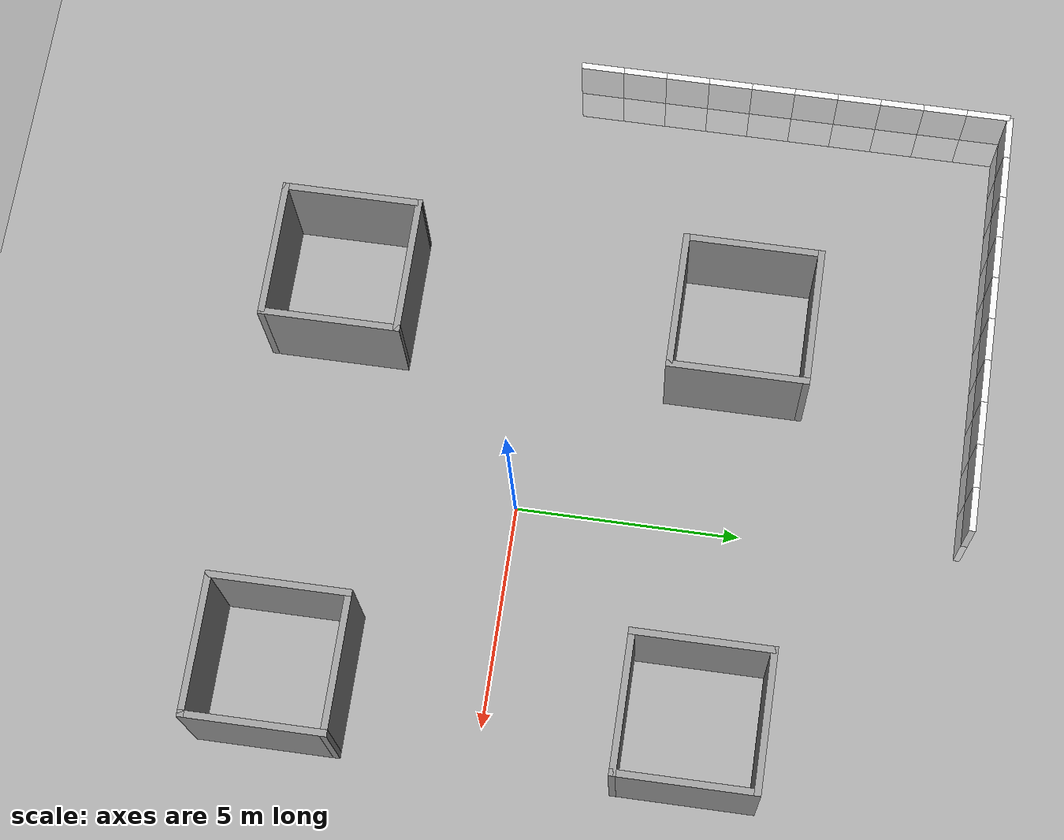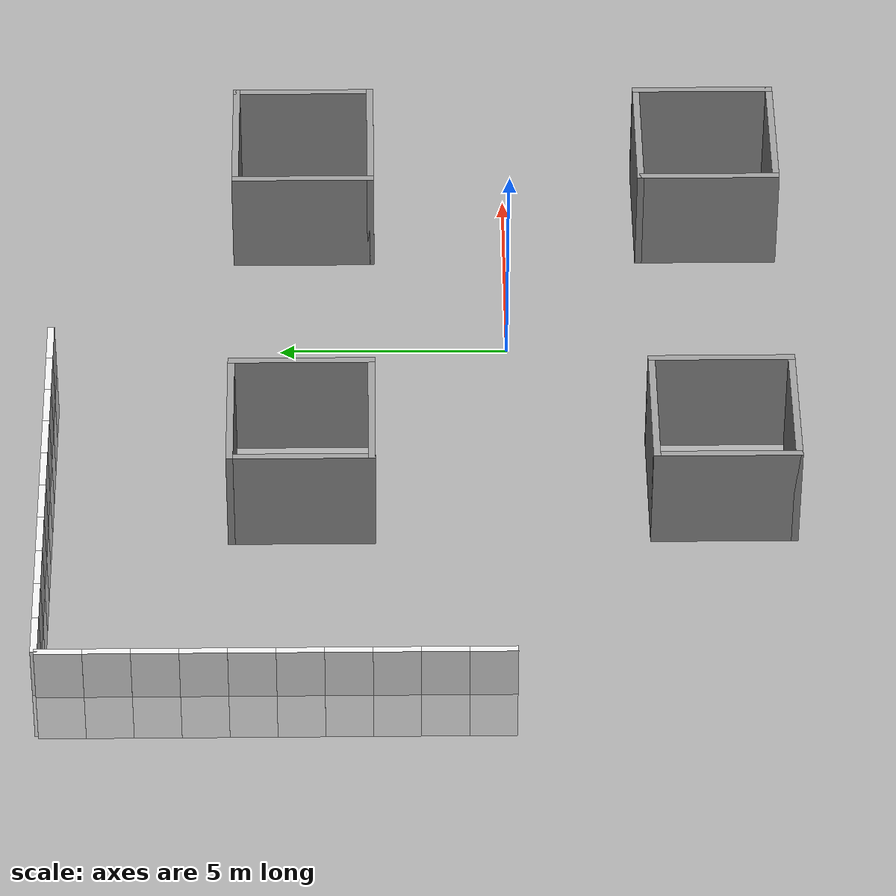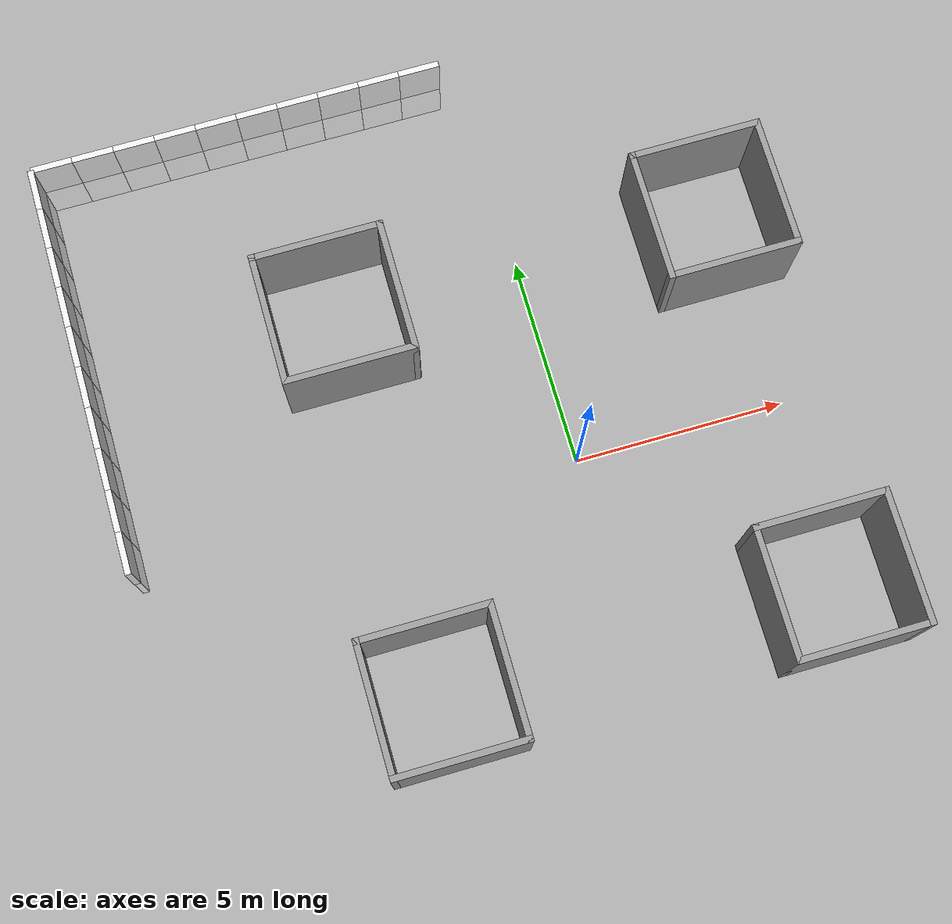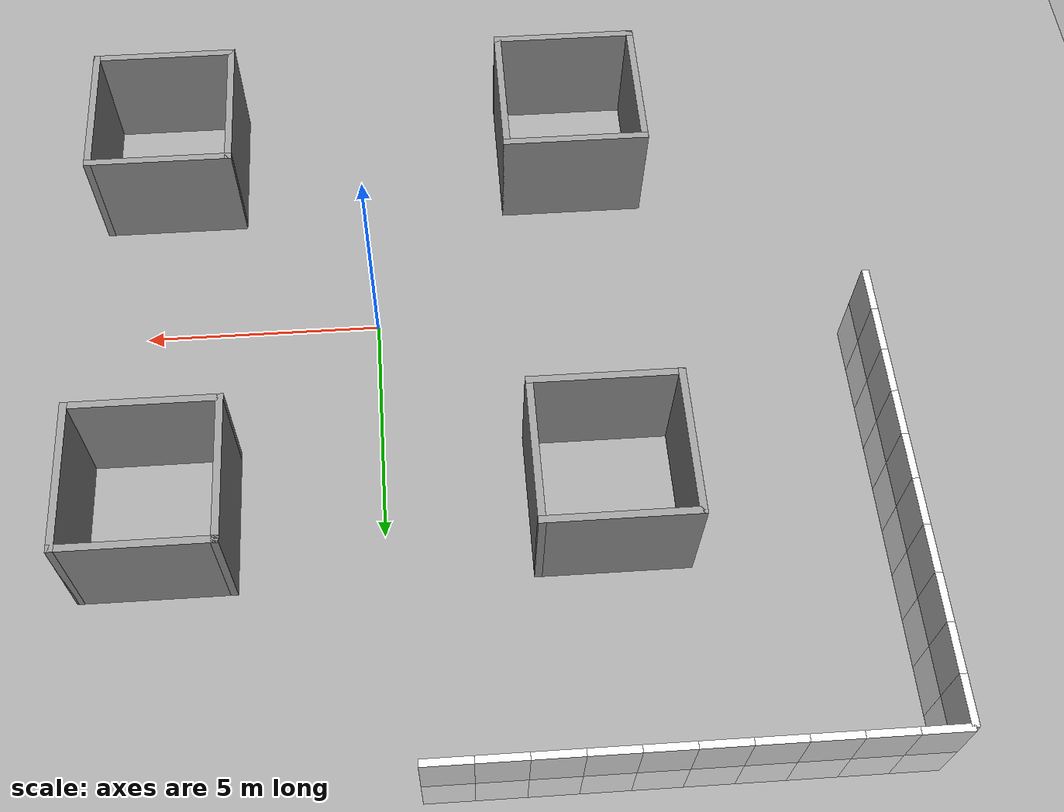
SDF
<sdf version="1.7">
 <world name="default">
  <model name="ground_plane">
   <static>1</static>
   <link name="link">
    <collision name="collision">
     <geometry><plane><normal>0 0 1</normal><size>100 100</size></plane></geometry>
     <surface>
      <contact><collide_bitmask>65535</collide_bitmask></contact>
      <friction><ode><mu>100</mu><mu2>50</mu2></ode></friction>
     </surface>
    </collision>
    <visual name="visual">
     <cast_shadows>0</cast_shadows>
     <geometry><plane><normal>0 0 1</normal><size>100 100</size></plane></geometry>
     <material>
      <script><uri>file://media/materials/scripts/gazebo.material</uri><name>Gazebo/Grey</name></script>
     </material>
    </visual>
   </link>
  </model>
  <model name="wall_left_01">
   <link name="Wall_10">
    <inertial>
     <mass>1</mass>
     <inertia><ixx>1</ixx><ixy>0</ixy><ixz>0</ixz><iyy>1</iyy><iyz>0</iyz><izz>1</izz></inertia>
    </inertial>
    <visual name="Wall_10_Visual_0">
     <geometry><box><size>1 0.15 2.5</size></box></geometry>
     <material>
      <script>
       <uri>model://wall/materials/scripts</uri>
       <uri>model://wall/materials/textures</uri>
       <name>wall_white</name>
      </script>
      <shader type="pixel"><normal_map>__default__</normal_map></shader>
      <ambient>1 1 1 1</ambient>
      <diffuse>1 1 1 1</diffuse>
      <specular>0 0 0 1</specular>
      <emissive>0 0 0 1</emissive>
     </material>
     <meta><layer>0</layer></meta>
    </visual>
    <collision name="Wall_10_Collision_0">
     <geometry><box><size>1 0.15 2.5</size></box></geometry>
     <surface>
      <friction>
       <ode><mu>1</mu><mu2>1</mu2><fdir1>0 0 0</fdir1><slip1>0</slip1><slip2>0</slip2></ode>
       <torsional>
        <coefficient>1</coefficient>
        <patch_radius>0</patch_radius>
        <surface_radius>0</surface_radius>
        <use_patch_radius>1</use_patch_radius>
        <ode><slip>0</slip></ode>
       </torsional>
      </friction>
      <bounce><restitution_coefficient>0</restitution_coefficient><threshold>1e+06</threshold></bounce>
      <contact>
       <collide_without_contact>0</collide_without_contact>
       <collide_without_contact_bitmask>1</collide_without_contact_bitmask>
       <collide_bitmask>1</collide_bitmask>
       <ode>
        <soft_cfm>0</soft_cfm>
        <soft_erp>0.2</soft_erp>
        <kp>1e+13</kp>
        <kd>1</kd>
        <max_vel>0.01</max_vel>
        <min_depth>0</min_depth>
       </ode>
       <bullet>
        <split_impulse>1</split_impulse>
        <split_impulse_penetration_threshold>-0.01</split_impulse_penetration_threshold>
        <soft_cfm>0</soft_cfm>
        <soft_erp>0.2</soft_erp>
        <kp>1e+13</kp>
        <kd>1</kd>
       </bullet>
      </contact>
     </surface>
    </collision>
   </link>
   <static>1</static>
   <pose>-10 10 0 0 -0 0</pose>
  </model>
  <model name="wall_left_02">
   <link name="Wall_10">
    <inertial>
     <mass>1</mass>
     <inertia><ixx>1</ixx><ixy>0</ixy><ixz>0</ixz><iyy>1</iyy><iyz>0</iyz><izz>1</izz></inertia>
    </inertial>
    <visual name="Wall_10_Visual_0">
     <geometry><box><size>1 0.15 2.5</size></box></geometry>
     <material>
      <script>
       <uri>model://wall/materials/scripts</uri>
       <uri>model://wall/materials/textures</uri>
       <name>wall_white</name>
      </script>
      <shader type="pixel"><normal_map>__default__</normal_map></shader>
      <ambient>1 1 1 1</ambient>
      <diffuse>1 1 1 1</diffuse>
      <specular>0 0 0 1</specular>
      <emissive>0 0 0 1</emissive>
     </material>
     <meta><layer>0</layer></meta>
    </visual>
    <collision name="Wall_10_Collision_0">
     <geometry><box><size>1 0.15 2.5</size></box></geometry>
     <surface>
      <friction>
       <ode><mu>1</mu><mu2>1</mu2><fdir1>0 0 0</fdir1><slip1>0</slip1><slip2>0</slip2></ode>
       <torsional>
        <coefficient>1</coefficient>
        <patch_radius>0</patch_radius>
        <surface_radius>0</surface_radius>
        <use_patch_radius>1</use_patch_radius>
        <ode><slip>0</slip></ode>
       </torsional>
      </friction>
      <bounce><restitution_coefficient>0</restitution_coefficient><threshold>1e+06</threshold></bounce>
      <contact>
       <collide_without_contact>0</collide_without_contact>
       <collide_without_contact_bitmask>1</collide_without_contact_bitmask>
       <collide_bitmask>1</collide_bitmask>
       <ode>
        <soft_cfm>0</soft_cfm>
        <soft_erp>0.2</soft_erp>
        <kp>1e+13</kp>
        <kd>1</kd>
        <max_vel>0.01</max_vel>
        <min_depth>0</min_depth>
       </ode>
       <bullet>
        <split_impulse>1</split_impulse>
        <split_impulse_penetration_threshold>-0.01</split_impulse_penetration_threshold>
        <soft_cfm>0</soft_cfm>
        <soft_erp>0.2</soft_erp>
        <kp>1e+13</kp>
        <kd>1</kd>
       </bullet>
      </contact>
     </surface>
    </collision>
   </link>
   <static>1</static>
   <pose>-9 10 0 0 -0 0</pose>
  </model>
  <model name="wall_left_03">
   <link name="Wall_10">
    <inertial>
     <mass>1</mass>
     <inertia><ixx>1</ixx><ixy>0</ixy><ixz>0</ixz><iyy>1</iyy><iyz>0</iyz><izz>1</izz></inertia>
    </inertial>
    <visual name="Wall_10_Visual_0">
     <geometry><box><size>1 0.15 2.5</size></box></geometry>
     <material>
      <script>
       <uri>model://wall/materials/scripts</uri>
       <uri>model://wall/materials/textures</uri>
       <name>wall_white</name>
      </script>
      <shader type="pixel"><normal_map>__default__</normal_map></shader>
      <ambient>1 1 1 1</ambient>
      <diffuse>1 1 1 1</diffuse>
      <specular>0 0 0 1</specular>
      <emissive>0 0 0 1</emissive>
     </material>
     <meta><layer>0</layer></meta>
    </visual>
    <collision name="Wall_10_Collision_0">
     <geometry><box><size>1 0.15 2.5</size></box></geometry>
     <surface>
      <friction>
       <ode><mu>1</mu><mu2>1</mu2><fdir1>0 0 0</fdir1><slip1>0</slip1><slip2>0</slip2></ode>
       <torsional>
        <coefficient>1</coefficient>
        <patch_radius>0</patch_radius>
        <surface_radius>0</surface_radius>
        <use_patch_radius>1</use_patch_radius>
        <ode><slip>0</slip></ode>
       </torsional>
      </friction>
      <bounce><restitution_coefficient>0</restitution_coefficient><threshold>1e+06</threshold></bounce>
      <contact>
       <collide_without_contact>0</collide_without_contact>
       <collide_without_contact_bitmask>1</collide_without_contact_bitmask>
       <collide_bitmask>1</collide_bitmask>
       <ode>
        <soft_cfm>0</soft_cfm>
        <soft_erp>0.2</soft_erp>
        <kp>1e+13</kp>
        <kd>1</kd>
        <max_vel>0.01</max_vel>
        <min_depth>0</min_depth>
       </ode>
       <bullet>
        <split_impulse>1</split_impulse>
        <split_impulse_penetration_threshold>-0.01</split_impulse_penetration_threshold>
        <soft_cfm>0</soft_cfm>
        <soft_erp>0.2</soft_erp>
        <kp>1e+13</kp>
        <kd>1</kd>
       </bullet>
      </contact>
     </surface>
    </collision>
   </link>
   <static>1</static>
   <pose>-8 10 0 0 -0 0</pose>
  </model>
  <model name="wall_left_04">
   <link name="Wall_10">
    <inertial>
     <mass>1</mass>
     <inertia><ixx>1</ixx><ixy>0</ixy><ixz>0</ixz><iyy>1</iyy><iyz>0</iyz><izz>1</izz></inertia>
    </inertial>
    <visual name="Wall_10_Visual_0">
     <geometry><box><size>1 0.15 2.5</size></box></geometry>
     <material>
      <script>
       <uri>model://wall/materials/scripts</uri>
       <uri>model://wall/materials/textures</uri>
       <name>wall_white</name>
      </script>
      <shader type="pixel"><normal_map>__default__</normal_map></shader>
      <ambient>1 1 1 1</ambient>
      <diffuse>1 1 1 1</diffuse>
      <specular>0 0 0 1</specular>
      <emissive>0 0 0 1</emissive>
     </material>
     <meta><layer>0</layer></meta>
    </visual>
    <collision name="Wall_10_Collision_0">
     <geometry><box><size>1 0.15 2.5</size></box></geometry>
     <surface>
      <friction>
       <ode><mu>1</mu><mu2>1</mu2><fdir1>0 0 0</fdir1><slip1>0</slip1><slip2>0</slip2></ode>
       <torsional>
        <coefficient>1</coefficient>
        <patch_radius>0</patch_radius>
        <surface_radius>0</surface_radius>
        <use_patch_radius>1</use_patch_radius>
        <ode><slip>0</slip></ode>
       </torsional>
      </friction>
      <bounce><restitution_coefficient>0</restitution_coefficient><threshold>1e+06</threshold></bounce>
      <contact>
       <collide_without_contact>0</collide_without_contact>
       <collide_without_contact_bitmask>1</collide_without_contact_bitmask>
       <collide_bitmask>1</collide_bitmask>
       <ode>
        <soft_cfm>0</soft_cfm>
        <soft_erp>0.2</soft_erp>
        <kp>1e+13</kp>
        <kd>1</kd>
        <max_vel>0.01</max_vel>
        <min_depth>0</min_depth>
       </ode>
       <bullet>
        <split_impulse>1</split_impulse>
        <split_impulse_penetration_threshold>-0.01</split_impulse_penetration_threshold>
        <soft_cfm>0</soft_cfm>
        <soft_erp>0.2</soft_erp>
        <kp>1e+13</kp>
        <kd>1</kd>
       </bullet>
      </contact>
     </surface>
    </collision>
   </link>
   <static>1</static>
   <pose>-7 10 0 0 -0 0</pose>
  </model>
  <model name="wall_left_05">
   <link name="Wall_10">
    <inertial>
     <mass>1</mass>
     <inertia><ixx>1</ixx><ixy>0</ixy><ixz>0</ixz><iyy>1</iyy><iyz>0</iyz><izz>1</izz></inertia>
    </inertial>
    <visual name="Wall_10_Visual_0">
     <geometry><box><size>1 0.15 2.5</size></box></geometry>
     <material>
      <script>
       <uri>model://wall/materials/scripts</uri>
       <uri>model://wall/materials/textures</uri>
       <name>wall_white</name>
      </script>
      <shader type="pixel"><normal_map>__default__</normal_map></shader>
      <ambient>1 1 1 1</ambient>
      <diffuse>1 1 1 1</diffuse>
      <specular>0 0 0 1</specular>
      <emissive>0 0 0 1</emissive>
     </material>
     <meta><layer>0</layer></meta>
    </visual>
    <collision name="Wall_10_Collision_0">
     <geometry><box><size>1 0.15 2.5</size></box></geometry>
     <surface>
      <friction>
       <ode><mu>1</mu><mu2>1</mu2><fdir1>0 0 0</fdir1><slip1>0</slip1><slip2>0</slip2></ode>
       <torsional>
        <coefficient>1</coefficient>
        <patch_radius>0</patch_radius>
        <surface_radius>0</surface_radius>
        <use_patch_radius>1</use_patch_radius>
        <ode><slip>0</slip></ode>
       </torsional>
      </friction>
      <bounce><restitution_coefficient>0</restitution_coefficient><threshold>1e+06</threshold></bounce>
      <contact>
       <collide_without_contact>0</collide_without_contact>
       <collide_without_contact_bitmask>1</collide_without_contact_bitmask>
       <collide_bitmask>1</collide_bitmask>
       <ode>
        <soft_cfm>0</soft_cfm>
        <soft_erp>0.2</soft_erp>
        <kp>1e+13</kp>
        <kd>1</kd>
        <max_vel>0.01</max_vel>
        <min_depth>0</min_depth>
       </ode>
       <bullet>
        <split_impulse>1</split_impulse>
        <split_impulse_penetration_threshold>-0.01</split_impulse_penetration_threshold>
        <soft_cfm>0</soft_cfm>
        <soft_erp>0.2</soft_erp>
        <kp>1e+13</kp>
        <kd>1</kd>
       </bullet>
      </contact>
     </surface>
    </collision>
   </link>
   <static>1</static>
   <pose>-6 10 0 0 -0 0</pose>
  </model>
  <model name="wall_left_06">
   <link name="Wall_10">
    <inertial>
     <mass>1</mass>
     <inertia><ixx>1</ixx><ixy>0</ixy><ixz>0</ixz><iyy>1</iyy><iyz>0</iyz><izz>1</izz></inertia>
    </inertial>
    <visual name="Wall_10_Visual_0">
     <geometry><box><size>1 0.15 2.5</size></box></geometry>
     <material>
      <script>
       <uri>model://wall/materials/scripts</uri>
       <uri>model://wall/materials/textures</uri>
       <name>wall_white</name>
      </script>
      <shader type="pixel"><normal_map>__default__</normal_map></shader>
      <ambient>1 1 1 1</ambient>
      <diffuse>1 1 1 1</diffuse>
      <specular>0 0 0 1</specular>
      <emissive>0 0 0 1</emissive>
     </material>
     <meta><layer>0</layer></meta>
    </visual>
    <collision name="Wall_10_Collision_0">
     <geometry><box><size>1 0.15 2.5</size></box></geometry>
     <surface>
      <friction>
       <ode><mu>1</mu><mu2>1</mu2><fdir1>0 0 0</fdir1><slip1>0</slip1><slip2>0</slip2></ode>
       <torsional>
        <coefficient>1</coefficient>
        <patch_radius>0</patch_radius>
        <surface_radius>0</surface_radius>
        <use_patch_radius>1</use_patch_radius>
        <ode><slip>0</slip></ode>
       </torsional>
      </friction>
      <bounce><restitution_coefficient>0</restitution_coefficient><threshold>1e+06</threshold></bounce>
      <contact>
       <collide_without_contact>0</collide_without_contact>
       <collide_without_contact_bitmask>1</collide_without_contact_bitmask>
       <collide_bitmask>1</collide_bitmask>
       <ode>
        <soft_cfm>0</soft_cfm>
        <soft_erp>0.2</soft_erp>
        <kp>1e+13</kp>
        <kd>1</kd>
        <max_vel>0.01</max_vel>
        <min_depth>0</min_depth>
       </ode>
       <bullet>
        <split_impulse>1</split_impulse>
        <split_impulse_penetration_threshold>-0.01</split_impulse_penetration_threshold>
        <soft_cfm>0</soft_cfm>
        <soft_erp>0.2</soft_erp>
        <kp>1e+13</kp>
        <kd>1</kd>
       </bullet>
      </contact>
     </surface>
    </collision>
   </link>
   <static>1</static>
   <pose>-5 10 0 0 -0 0</pose>
  </model>
  <model name="wall_left_07">
   <link name="Wall_10">
    <inertial>
     <mass>1</mass>
     <inertia><ixx>1</ixx><ixy>0</ixy><ixz>0</ixz><iyy>1</iyy><iyz>0</iyz><izz>1</izz></inertia>
    </inertial>
    <visual name="Wall_10_Visual_0">
     <geometry><box><size>1 0.15 2.5</size></box></geometry>
     <material>
      <script>
       <uri>model://wall/materials/scripts</uri>
       <uri>model://wall/materials/textures</uri>
       <name>wall_white</name>
      </script>
      <shader type="pixel"><normal_map>__default__</normal_map></shader>
      <ambient>1 1 1 1</ambient>
      <diffuse>1 1 1 1</diffuse>
      <specular>0 0 0 1</specular>
      <emissive>0 0 0 1</emissive>
     </material>
     <meta><layer>0</layer></meta>
    </visual>
    <collision name="Wall_10_Collision_0">
     <geometry><box><size>1 0.15 2.5</size></box></geometry>
     <surface>
      <friction>
       <ode><mu>1</mu><mu2>1</mu2><fdir1>0 0 0</fdir1><slip1>0</slip1><slip2>0</slip2></ode>
       <torsional>
        <coefficient>1</coefficient>
        <patch_radius>0</patch_radius>
        <surface_radius>0</surface_radius>
        <use_patch_radius>1</use_patch_radius>
        <ode><slip>0</slip></ode>
       </torsional>
      </friction>
      <bounce><restitution_coefficient>0</restitution_coefficient><threshold>1e+06</threshold></bounce>
      <contact>
       <collide_without_contact>0</collide_without_contact>
       <collide_without_contact_bitmask>1</collide_without_contact_bitmask>
       <collide_bitmask>1</collide_bitmask>
       <ode>
        <soft_cfm>0</soft_cfm>
        <soft_erp>0.2</soft_erp>
        <kp>1e+13</kp>
        <kd>1</kd>
        <max_vel>0.01</max_vel>
        <min_depth>0</min_depth>
       </ode>
       <bullet>
        <split_impulse>1</split_impulse>
        <split_impulse_penetration_threshold>-0.01</split_impulse_penetration_threshold>
        <soft_cfm>0</soft_cfm>
        <soft_erp>0.2</soft_erp>
        <kp>1e+13</kp>
        <kd>1</kd>
       </bullet>
      </contact>
     </surface>
    </collision>
   </link>
   <static>1</static>
   <pose>-4 10 0 0 -0 0</pose>
  </model>
  <model name="wall_left_08">
   <link name="Wall_10">
    <inertial>
     <mass>1</mass>
     <inertia><ixx>1</ixx><ixy>0</ixy><ixz>0</ixz><iyy>1</iyy><iyz>0</iyz><izz>1</izz></inertia>
    </inertial>
    <visual name="Wall_10_Visual_0">
     <geometry><box><size>1 0.15 2.5</size></box></geometry>
     <material>
      <script>
       <uri>model://wall/materials/scripts</uri>
       <uri>model://wall/materials/textures</uri>
       <name>wall_white</name>
      </script>
      <shader type="pixel"><normal_map>__default__</normal_map></shader>
      <ambient>1 1 1 1</ambient>
      <diffuse>1 1 1 1</diffuse>
      <specular>0 0 0 1</specular>
      <emissive>0 0 0 1</emissive>
     </material>
     <meta><layer>0</layer></meta>
    </visual>
    <collision name="Wall_10_Collision_0">
     <geometry><box><size>1 0.15 2.5</size></box></geometry>
     <surface>
      <friction>
       <ode><mu>1</mu><mu2>1</mu2><fdir1>0 0 0</fdir1><slip1>0</slip1><slip2>0</slip2></ode>
       <torsional>
        <coefficient>1</coefficient>
        <patch_radius>0</patch_radius>
        <surface_radius>0</surface_radius>
        <use_patch_radius>1</use_patch_radius>
        <ode><slip>0</slip></ode>
       </torsional>
      </friction>
      <bounce><restitution_coefficient>0</restitution_coefficient><threshold>1e+06</threshold></bounce>
      <contact>
       <collide_without_contact>0</collide_without_contact>
       <collide_without_contact_bitmask>1</collide_without_contact_bitmask>
       <collide_bitmask>1</collide_bitmask>
       <ode>
        <soft_cfm>0</soft_cfm>
        <soft_erp>0.2</soft_erp>
        <kp>1e+13</kp>
        <kd>1</kd>
        <max_vel>0.01</max_vel>
        <min_depth>0</min_depth>
       </ode>
       <bullet>
        <split_impulse>1</split_impulse>
        <split_impulse_penetration_threshold>-0.01</split_impulse_penetration_threshold>
        <soft_cfm>0</soft_cfm>
        <soft_erp>0.2</soft_erp>
        <kp>1e+13</kp>
        <kd>1</kd>
       </bullet>
      </contact>
     </surface>
    </collision>
   </link>
   <static>1</static>
   <pose>-3 10 0 0 -0 0</pose>
  </model>
  <model name="wall_left_09">
   <link name="Wall_10">
    <inertial>
     <mass>1</mass>
     <inertia><ixx>1</ixx><ixy>0</ixy><ixz>0</ixz><iyy>1</iyy><iyz>0</iyz><izz>1</izz></inertia>
    </inertial>
    <visual name="Wall_10_Visual_0">
     <geometry><box><size>1 0.15 2.5</size></box></geometry>
     <material>
      <script>
       <uri>model://wall/materials/scripts</uri>
       <uri>model://wall/materials/textures</uri>
       <name>wall_white</name>
      </script>
      <shader type="pixel"><normal_map>__default__</normal_map></shader>
      <ambient>1 1 1 1</ambient>
      <diffuse>1 1 1 1</diffuse>
      <specular>0 0 0 1</specular>
      <emissive>0 0 0 1</emissive>
     </material>
     <meta><layer>0</layer></meta>
    </visual>
    <collision name="Wall_10_Collision_0">
     <geometry><box><size>1 0.15 2.5</size></box></geometry>
     <surface>
      <friction>
       <ode><mu>1</mu><mu2>1</mu2><fdir1>0 0 0</fdir1><slip1>0</slip1><slip2>0</slip2></ode>
       <torsional>
        <coefficient>1</coefficient>
        <patch_radius>0</patch_radius>
        <surface_radius>0</surface_radius>
        <use_patch_radius>1</use_patch_radius>
        <ode><slip>0</slip></ode>
       </torsional>
      </friction>
      <bounce><restitution_coefficient>0</restitution_coefficient><threshold>1e+06</threshold></bounce>
      <contact>
       <collide_without_contact>0</collide_without_contact>
       <collide_without_contact_bitmask>1</collide_without_contact_bitmask>
       <collide_bitmask>1</collide_bitmask>
       <ode>
        <soft_cfm>0</soft_cfm>
        <soft_erp>0.2</soft_erp>
        <kp>1e+13</kp>
        <kd>1</kd>
        <max_vel>0.01</max_vel>
        <min_depth>0</min_depth>
       </ode>
       <bullet>
        <split_impulse>1</split_impulse>
        <split_impulse_penetration_threshold>-0.01</split_impulse_penetration_threshold>
        <soft_cfm>0</soft_cfm>
        <soft_erp>0.2</soft_erp>
        <kp>1e+13</kp>
        <kd>1</kd>
       </bullet>
      </contact>
     </surface>
    </collision>
   </link>
   <static>1</static>
   <pose>-2 10 0 0 -0 0</pose>
  </model>
  <model name="wall_left_10">
   <link name="Wall_10">
    <inertial>
     <mass>1</mass>
     <inertia><ixx>1</ixx><ixy>0</ixy><ixz>0</ixz><iyy>1</iyy><iyz>0</iyz><izz>1</izz></inertia>
    </inertial>
    <visual name="Wall_10_Visual_0">
     <geometry><box><size>1 0.15 2.5</size></box></geometry>
     <material>
      <script>
       <uri>model://wall/materials/scripts</uri>
       <uri>model://wall/materials/textures</uri>
       <name>wall_white</name>
      </script>
      <shader type="pixel"><normal_map>__default__</normal_map></shader>
      <ambient>1 1 1 1</ambient>
      <diffuse>1 1 1 1</diffuse>
      <specular>0 0 0 1</specular>
      <emissive>0 0 0 1</emissive>
     </material>
     <meta><layer>0</layer></meta>
    </visual>
    <collision name="Wall_10_Collision_0">
     <geometry><box><size>1 0.15 2.5</size></box></geometry>
     <surface>
      <friction>
       <ode><mu>1</mu><mu2>1</mu2><fdir1>0 0 0</fdir1><slip1>0</slip1><slip2>0</slip2></ode>
       <torsional>
        <coefficient>1</coefficient>
        <patch_radius>0</patch_radius>
        <surface_radius>0</surface_radius>
        <use_patch_radius>1</use_patch_radius>
        <ode><slip>0</slip></ode>
       </torsional>
      </friction>
      <bounce><restitution_coefficient>0</restitution_coefficient><threshold>1e+06</threshold></bounce>
      <contact>
       <collide_without_contact>0</collide_without_contact>
       <collide_without_contact_bitmask>1</collide_without_contact_bitmask>
       <collide_bitmask>1</collide_bitmask>
       <ode>
        <soft_cfm>0</soft_cfm>
        <soft_erp>0.2</soft_erp>
        <kp>1e+13</kp>
        <kd>1</kd>
        <max_vel>0.01</max_vel>
        <min_depth>0</min_depth>
       </ode>
       <bullet>
        <split_impulse>1</split_impulse>
        <split_impulse_penetration_threshold>-0.01</split_impulse_penetration_threshold>
        <soft_cfm>0</soft_cfm>
        <soft_erp>0.2</soft_erp>
        <kp>1e+13</kp>
        <kd>1</kd>
       </bullet>
      </contact>
     </surface>
    </collision>
   </link>
   <static>1</static>
   <pose>-1 10 0 0 -0 0</pose>
  </model>
  <model name="wall_back_01">
   <link name="Wall_10">
    <inertial>
     <mass>1</mass>
     <inertia><ixx>1</ixx><ixy>0</ixy><ixz>0</ixz><iyy>1</iyy><iyz>0</iyz><izz>1</izz></inertia>
    </inertial>
    <visual name="Wall_10_Visual_0">
     <geometry><box><size>1 0.15 2.5</size></box></geometry>
     <material>
      <script>
       <uri>model://wall/materials/scripts</uri>
       <uri>model://wall/materials/textures</uri>
       <name>wall_white</name>
      </script>
      <shader type="pixel"><normal_map>__default__</normal_map></shader>
      <ambient>1 1 1 1</ambient>
      <diffuse>1 1 1 1</diffuse>
      <specular>0 0 0 1</specular>
      <emissive>0 0 0 1</emissive>
     </material>
     <meta><layer>0</layer></meta>
    </visual>
    <collision name="Wall_10_Collision_0">
     <geometry><box><size>1 0.15 2.5</size></box></geometry>
     <surface>
      <friction>
       <ode><mu>1</mu><mu2>1</mu2><fdir1>0 0 0</fdir1><slip1>0</slip1><slip2>0</slip2></ode>
       <torsional>
        <coefficient>1</coefficient>
        <patch_radius>0</patch_radius>
        <surface_radius>0</surface_radius>
        <use_patch_radius>1</use_patch_radius>
        <ode><slip>0</slip></ode>
       </torsional>
      </friction>
      <bounce><restitution_coefficient>0</restitution_coefficient><threshold>1e+06</threshold></bounce>
      <contact>
       <collide_without_contact>0</collide_without_contact>
       <collide_without_contact_bitmask>1</collide_without_contact_bitmask>
       <collide_bitmask>1</collide_bitmask>
       <ode>
        <soft_cfm>0</soft_cfm>
        <soft_erp>0.2</soft_erp>
        <kp>1e+13</kp>
        <kd>1</kd>
        <max_vel>0.01</max_vel>
        <min_depth>0</min_depth>
       </ode>
       <bullet>
        <split_impulse>1</split_impulse>
        <split_impulse_penetration_threshold>-0.01</split_impulse_penetration_threshold>
        <soft_cfm>0</soft_cfm>
        <soft_erp>0.2</soft_erp>
        <kp>1e+13</kp>
        <kd>1</kd>
       </bullet>
      </contact>
     </surface>
    </collision>
   </link>
   <static>1</static>
   <pose>-10.5 9.5 0 0 -0 1.57</pose>
  </model>
  <model name="wall_back_02">
   <link name="Wall_10">
    <inertial>
     <mass>1</mass>
     <inertia><ixx>1</ixx><ixy>0</ixy><ixz>0</ixz><iyy>1</iyy><iyz>0</iyz><izz>1</izz></inertia>
    </inertial>
    <visual name="Wall_10_Visual_0">
     <geometry><box><size>1 0.15 2.5</size></box></geometry>
     <material>
      <script>
       <uri>model://wall/materials/scripts</uri>
       <uri>model://wall/materials/textures</uri>
       <name>wall_white</name>
      </script>
      <shader type="pixel"><normal_map>__default__</normal_map></shader>
      <ambient>1 1 1 1</ambient>
      <diffuse>1 1 1 1</diffuse>
      <specular>0 0 0 1</specular>
      <emissive>0 0 0 1</emissive>
     </material>
     <meta><layer>0</layer></meta>
    </visual>
    <collision name="Wall_10_Collision_0">
     <geometry><box><size>1 0.15 2.5</size></box></geometry>
     <surface>
      <friction>
       <ode><mu>1</mu><mu2>1</mu2><fdir1>0 0 0</fdir1><slip1>0</slip1><slip2>0</slip2></ode>
       <torsional>
        <coefficient>1</coefficient>
        <patch_radius>0</patch_radius>
        <surface_radius>0</surface_radius>
        <use_patch_radius>1</use_patch_radius>
        <ode><slip>0</slip></ode>
       </torsional>
      </friction>
      <bounce><restitution_coefficient>0</restitution_coefficient><threshold>1e+06</threshold></bounce>
      <contact>
       <collide_without_contact>0</collide_without_contact>
       <collide_without_contact_bitmask>1</collide_without_contact_bitmask>
       <collide_bitmask>1</collide_bitmask>
       <ode>
        <soft_cfm>0</soft_cfm>
        <soft_erp>0.2</soft_erp>
        <kp>1e+13</kp>
        <kd>1</kd>
        <max_vel>0.01</max_vel>
        <min_depth>0</min_depth>
       </ode>
       <bullet>
        <split_impulse>1</split_impulse>
        <split_impulse_penetration_threshold>-0.01</split_impulse_penetration_threshold>
        <soft_cfm>0</soft_cfm>
        <soft_erp>0.2</soft_erp>
        <kp>1e+13</kp>
        <kd>1</kd>
       </bullet>
      </contact>
     </surface>
    </collision>
   </link>
   <static>1</static>
   <pose>-10.5 8.5 0 0 -0 1.57</pose>
  </model>
  <model name="wall_back_03">
   <link name="Wall_10">
    <inertial>
     <mass>1</mass>
     <inertia><ixx>1</ixx><ixy>0</ixy><ixz>0</ixz><iyy>1</iyy><iyz>0</iyz><izz>1</izz></inertia>
    </inertial>
    <visual name="Wall_10_Visual_0">
     <geometry><box><size>1 0.15 2.5</size></box></geometry>
     <material>
      <script>
       <uri>model://wall/materials/scripts</uri>
       <uri>model://wall/materials/textures</uri>
       <name>wall_white</name>
      </script>
      <shader type="pixel"><normal_map>__default__</normal_map></shader>
      <ambient>1 1 1 1</ambient>
      <diffuse>1 1 1 1</diffuse>
      <specular>0 0 0 1</specular>
      <emissive>0 0 0 1</emissive>
     </material>
     <meta><layer>0</layer></meta>
    </visual>
    <collision name="Wall_10_Collision_0">
     <geometry><box><size>1 0.15 2.5</size></box></geometry>
     <surface>
      <friction>
       <ode><mu>1</mu><mu2>1</mu2><fdir1>0 0 0</fdir1><slip1>0</slip1><slip2>0</slip2></ode>
       <torsional>
        <coefficient>1</coefficient>
        <patch_radius>0</patch_radius>
        <surface_radius>0</surface_radius>
        <use_patch_radius>1</use_patch_radius>
        <ode><slip>0</slip></ode>
       </torsional>
      </friction>
      <bounce><restitution_coefficient>0</restitution_coefficient><threshold>1e+06</threshold></bounce>
      <contact>
       <collide_without_contact>0</collide_without_contact>
       <collide_without_contact_bitmask>1</collide_without_contact_bitmask>
       <collide_bitmask>1</collide_bitmask>
       <ode>
        <soft_cfm>0</soft_cfm>
        <soft_erp>0.2</soft_erp>
        <kp>1e+13</kp>
        <kd>1</kd>
        <max_vel>0.01</max_vel>
        <min_depth>0</min_depth>
       </ode>
       <bullet>
        <split_impulse>1</split_impulse>
        <split_impulse_penetration_threshold>-0.01</split_impulse_penetration_threshold>
        <soft_cfm>0</soft_cfm>
        <soft_erp>0.2</soft_erp>
        <kp>1e+13</kp>
        <kd>1</kd>
       </bullet>
      </contact>
     </surface>
    </collision>
   </link>
   <static>1</static>
   <pose>-10.5 7.5 0 0 -0 1.57</pose>
  </model>
  <model name="wall_back_04">
   <link name="Wall_10">
    <inertial>
     <mass>1</mass>
     <inertia><ixx>1</ixx><ixy>0</ixy><ixz>0</ixz><iyy>1</iyy><iyz>0</iyz><izz>1</izz></inertia>
    </inertial>
    <visual name="Wall_10_Visual_0">
     <geometry><box><size>1 0.15 2.5</size></box></geometry>
     <material>
      <script>
       <uri>model://wall/materials/scripts</uri>
       <uri>model://wall/materials/textures</uri>
       <name>wall_white</name>
      </script>
      <shader type="pixel"><normal_map>__default__</normal_map></shader>
      <ambient>1 1 1 1</ambient>
      <diffuse>1 1 1 1</diffuse>
      <specular>0 0 0 1</specular>
      <emissive>0 0 0 1</emissive>
     </material>
     <meta><layer>0</layer></meta>
    </visual>
    <collision name="Wall_10_Collision_0">
     <geometry><box><size>1 0.15 2.5</size></box></geometry>
     <surface>
      <friction>
       <ode><mu>1</mu><mu2>1</mu2><fdir1>0 0 0</fdir1><slip1>0</slip1><slip2>0</slip2></ode>
       <torsional>
        <coefficient>1</coefficient>
        <patch_radius>0</patch_radius>
        <surface_radius>0</surface_radius>
        <use_patch_radius>1</use_patch_radius>
        <ode><slip>0</slip></ode>
       </torsional>
      </friction>
      <bounce><restitution_coefficient>0</restitution_coefficient><threshold>1e+06</threshold></bounce>
      <contact>
       <collide_without_contact>0</collide_without_contact>
       <collide_without_contact_bitmask>1</collide_without_contact_bitmask>
       <collide_bitmask>1</collide_bitmask>
       <ode>
        <soft_cfm>0</soft_cfm>
        <soft_erp>0.2</soft_erp>
        <kp>1e+13</kp>
        <kd>1</kd>
        <max_vel>0.01</max_vel>
        <min_depth>0</min_depth>
       </ode>
       <bullet>
        <split_impulse>1</split_impulse>
        <split_impulse_penetration_threshold>-0.01</split_impulse_penetration_threshold>
        <soft_cfm>0</soft_cfm>
        <soft_erp>0.2</soft_erp>
        <kp>1e+13</kp>
        <kd>1</kd>
       </bullet>
      </contact>
     </surface>
    </collision>
   </link>
   <static>1</static>
   <pose>-10.5 6.5 0 0 -0 1.57</pose>
  </model>
  <model name="wall_back_05">
   <link name="Wall_10">
    <inertial>
     <mass>1</mass>
     <inertia><ixx>1</ixx><ixy>0</ixy><ixz>0</ixz><iyy>1</iyy><iyz>0</iyz><izz>1</izz></inertia>
    </inertial>
    <visual name="Wall_10_Visual_0">
     <geometry><box><size>1 0.15 2.5</size></box></geometry>
     <material>
      <script>
       <uri>model://wall/materials/scripts</uri>
       <uri>model://wall/materials/textures</uri>
       <name>wall_white</name>
      </script>
      <shader type="pixel"><normal_map>__default__</normal_map></shader>
      <ambient>1 1 1 1</ambient>
      <diffuse>1 1 1 1</diffuse>
      <specular>0 0 0 1</specular>
      <emissive>0 0 0 1</emissive>
     </material>
     <meta><layer>0</layer></meta>
    </visual>
    <collision name="Wall_10_Collision_0">
     <geometry><box><size>1 0.15 2.5</size></box></geometry>
     <surface>
      <friction>
       <ode><mu>1</mu><mu2>1</mu2><fdir1>0 0 0</fdir1><slip1>0</slip1><slip2>0</slip2></ode>
       <torsional>
        <coefficient>1</coefficient>
        <patch_radius>0</patch_radius>
        <surface_radius>0</surface_radius>
        <use_patch_radius>1</use_patch_radius>
        <ode><slip>0</slip></ode>
       </torsional>
      </friction>
      <bounce><restitution_coefficient>0</restitution_coefficient><threshold>1e+06</threshold></bounce>
      <contact>
       <collide_without_contact>0</collide_without_contact>
       <collide_without_contact_bitmask>1</collide_without_contact_bitmask>
       <collide_bitmask>1</collide_bitmask>
       <ode>
        <soft_cfm>0</soft_cfm>
        <soft_erp>0.2</soft_erp>
        <kp>1e+13</kp>
        <kd>1</kd>
        <max_vel>0.01</max_vel>
        <min_depth>0</min_depth>
       </ode>
       <bullet>
        <split_impulse>1</split_impulse>
        <split_impulse_penetration_threshold>-0.01</split_impulse_penetration_threshold>
        <soft_cfm>0</soft_cfm>
        <soft_erp>0.2</soft_erp>
        <kp>1e+13</kp>
        <kd>1</kd>
       </bullet>
      </contact>
     </surface>
    </collision>
   </link>
   <static>1</static>
   <pose>-10.5 5.5 0 0 -0 1.57</pose>
  </model>
  <model name="wall_back_06">
   <link name="Wall_10">
    <inertial>
     <mass>1</mass>
     <inertia><ixx>1</ixx><ixy>0</ixy><ixz>0</ixz><iyy>1</iyy><iyz>0</iyz><izz>1</izz></inertia>
    </inertial>
    <visual name="Wall_10_Visual_0">
     <geometry><box><size>1 0.15 2.5</size></box></geometry>
     <material>
      <script>
       <uri>model://wall/materials/scripts</uri>
       <uri>model://wall/materials/textures</uri>
       <name>wall_white</name>
      </script>
      <shader type="pixel"><normal_map>__default__</normal_map></shader>
      <ambient>1 1 1 1</ambient>
      <diffuse>1 1 1 1</diffuse>
      <specular>0 0 0 1</specular>
      <emissive>0 0 0 1</emissive>
     </material>
     <meta><layer>0</layer></meta>
    </visual>
    <collision name="Wall_10_Collision_0">
     <geometry><box><size>1 0.15 2.5</size></box></geometry>
     <surface>
      <friction>
       <ode><mu>1</mu><mu2>1</mu2><fdir1>0 0 0</fdir1><slip1>0</slip1><slip2>0</slip2></ode>
       <torsional>
        <coefficient>1</coefficient>
        <patch_radius>0</patch_radius>
        <surface_radius>0</surface_radius>
        <use_patch_radius>1</use_patch_radius>
        <ode><slip>0</slip></ode>
       </torsional>
      </friction>
      <bounce><restitution_coefficient>0</restitution_coefficient><threshold>1e+06</threshold></bounce>
      <contact>
       <collide_without_contact>0</collide_without_contact>
       <collide_without_contact_bitmask>1</collide_without_contact_bitmask>
       <collide_bitmask>1</collide_bitmask>
       <ode>
        <soft_cfm>0</soft_cfm>
        <soft_erp>0.2</soft_erp>
        <kp>1e+13</kp>
        <kd>1</kd>
        <max_vel>0.01</max_vel>
        <min_depth>0</min_depth>
       </ode>
       <bullet>
        <split_impulse>1</split_impulse>
        <split_impulse_penetration_threshold>-0.01</split_impulse_penetration_threshold>
        <soft_cfm>0</soft_cfm>
        <soft_erp>0.2</soft_erp>
        <kp>1e+13</kp>
        <kd>1</kd>
       </bullet>
      </contact>
     </surface>
    </collision>
   </link>
   <static>1</static>
   <pose>-10.5 4.5 0 0 -0 1.57</pose>
  </model>
  <model name="wall_back_07">
   <link name="Wall_10">
    <inertial>
     <mass>1</mass>
     <inertia><ixx>1</ixx><ixy>0</ixy><ixz>0</ixz><iyy>1</iyy><iyz>0</iyz><izz>1</izz></inertia>
    </inertial>
    <visual name="Wall_10_Visual_0">
     <geometry><box><size>1 0.15 2.5</size></box></geometry>
     <material>
      <script>
       <uri>model://wall/materials/scripts</uri>
       <uri>model://wall/materials/textures</uri>
       <name>wall_white</name>
      </script>
      <shader type="pixel"><normal_map>__default__</normal_map></shader>
      <ambient>1 1 1 1</ambient>
      <diffuse>1 1 1 1</diffuse>
      <specular>0 0 0 1</specular>
      <emissive>0 0 0 1</emissive>
     </material>
     <meta><layer>0</layer></meta>
    </visual>
    <collision name="Wall_10_Collision_0">
     <geometry><box><size>1 0.15 2.5</size></box></geometry>
     <surface>
      <friction>
       <ode><mu>1</mu><mu2>1</mu2><fdir1>0 0 0</fdir1><slip1>0</slip1><slip2>0</slip2></ode>
       <torsional>
        <coefficient>1</coefficient>
        <patch_radius>0</patch_radius>
        <surface_radius>0</surface_radius>
        <use_patch_radius>1</use_patch_radius>
        <ode><slip>0</slip></ode>
       </torsional>
      </friction>
      <bounce><restitution_coefficient>0</restitution_coefficient><threshold>1e+06</threshold></bounce>
      <contact>
       <collide_without_contact>0</collide_without_contact>
       <collide_without_contact_bitmask>1</collide_without_contact_bitmask>
       <collide_bitmask>1</collide_bitmask>
       <ode>
        <soft_cfm>0</soft_cfm>
        <soft_erp>0.2</soft_erp>
        <kp>1e+13</kp>
        <kd>1</kd>
        <max_vel>0.01</max_vel>
        <min_depth>0</min_depth>
       </ode>
       <bullet>
        <split_impulse>1</split_impulse>
        <split_impulse_penetration_threshold>-0.01</split_impulse_penetration_threshold>
        <soft_cfm>0</soft_cfm>
        <soft_erp>0.2</soft_erp>
        <kp>1e+13</kp>
        <kd>1</kd>
       </bullet>
      </contact>
     </surface>
    </collision>
   </link>
   <static>1</static>
   <pose>-10.5 3.5 0 0 -0 1.57</pose>
  </model>
  <model name="wall_back_08">
   <link name="Wall_10">
    <inertial>
     <mass>1</mass>
     <inertia><ixx>1</ixx><ixy>0</ixy><ixz>0</ixz><iyy>1</iyy><iyz>0</iyz><izz>1</izz></inertia>
    </inertial>
    <visual name="Wall_10_Visual_0">
     <geometry><box><size>1 0.15 2.5</size></box></geometry>
     <material>
      <script>
       <uri>model://wall/materials/scripts</uri>
       <uri>model://wall/materials/textures</uri>
       <name>wall_white</name>
      </script>
      <shader type="pixel"><normal_map>__default__</normal_map></shader>
      <ambient>1 1 1 1</ambient>
      <diffuse>1 1 1 1</diffuse>
      <specular>0 0 0 1</specular>
      <emissive>0 0 0 1</emissive>
     </material>
     <meta><layer>0</layer></meta>
    </visual>
    <collision name="Wall_10_Collision_0">
     <geometry><box><size>1 0.15 2.5</size></box></geometry>
     <surface>
      <friction>
       <ode><mu>1</mu><mu2>1</mu2><fdir1>0 0 0</fdir1><slip1>0</slip1><slip2>0</slip2></ode>
       <torsional>
        <coefficient>1</coefficient>
        <patch_radius>0</patch_radius>
        <surface_radius>0</surface_radius>
        <use_patch_radius>1</use_patch_radius>
        <ode><slip>0</slip></ode>
       </torsional>
      </friction>
      <bounce><restitution_coefficient>0</restitution_coefficient><threshold>1e+06</threshold></bounce>
      <contact>
       <collide_without_contact>0</collide_without_contact>
       <collide_without_contact_bitmask>1</collide_without_contact_bitmask>
       <collide_bitmask>1</collide_bitmask>
       <ode>
        <soft_cfm>0</soft_cfm>
        <soft_erp>0.2</soft_erp>
        <kp>1e+13</kp>
        <kd>1</kd>
        <max_vel>0.01</max_vel>
        <min_depth>0</min_depth>
       </ode>
       <bullet>
        <split_impulse>1</split_impulse>
        <split_impulse_penetration_threshold>-0.01</split_impulse_penetration_threshold>
        <soft_cfm>0</soft_cfm>
        <soft_erp>0.2</soft_erp>
        <kp>1e+13</kp>
        <kd>1</kd>
       </bullet>
      </contact>
     </surface>
    </collision>
   </link>
   <static>1</static>
   <pose>-10.5 2.5 0 0 -0 1.57</pose>
  </model>
  <model name="wall_back_09">
   <link name="Wall_10">
    <inertial>
     <mass>1</mass>
     <inertia><ixx>1</ixx><ixy>0</ixy><ixz>0</ixz><iyy>1</iyy><iyz>0</iyz><izz>1</izz></inertia>
    </inertial>
    <visual name="Wall_10_Visual_0">
     <geometry><box><size>1 0.15 2.5</size></box></geometry>
     <material>
      <script>
       <uri>model://wall/materials/scripts</uri>
       <uri>model://wall/materials/textures</uri>
       <name>wall_white</name>
      </script>
      <shader type="pixel"><normal_map>__default__</normal_map></shader>
      <ambient>1 1 1 1</ambient>
      <diffuse>1 1 1 1</diffuse>
      <specular>0 0 0 1</specular>
      <emissive>0 0 0 1</emissive>
     </material>
     <meta><layer>0</layer></meta>
    </visual>
    <collision name="Wall_10_Collision_0">
     <geometry><box><size>1 0.15 2.5</size></box></geometry>
     <surface>
      <friction>
       <ode><mu>1</mu><mu2>1</mu2><fdir1>0 0 0</fdir1><slip1>0</slip1><slip2>0</slip2></ode>
       <torsional>
        <coefficient>1</coefficient>
        <patch_radius>0</patch_radius>
        <surface_radius>0</surface_radius>
        <use_patch_radius>1</use_patch_radius>
        <ode><slip>0</slip></ode>
       </torsional>
      </friction>
      <bounce><restitution_coefficient>0</restitution_coefficient><threshold>1e+06</threshold></bounce>
      <contact>
       <collide_without_contact>0</collide_without_contact>
       <collide_without_contact_bitmask>1</collide_without_contact_bitmask>
       <collide_bitmask>1</collide_bitmask>
       <ode>
        <soft_cfm>0</soft_cfm>
        <soft_erp>0.2</soft_erp>
        <kp>1e+13</kp>
        <kd>1</kd>
        <max_vel>0.01</max_vel>
        <min_depth>0</min_depth>
       </ode>
       <bullet>
        <split_impulse>1</split_impulse>
        <split_impulse_penetration_threshold>-0.01</split_impulse_penetration_threshold>
        <soft_cfm>0</soft_cfm>
        <soft_erp>0.2</soft_erp>
        <kp>1e+13</kp>
        <kd>1</kd>
       </bullet>
      </contact>
     </surface>
    </collision>
   </link>
   <static>1</static>
   <pose>-10.5 1.5 0 0 -0 1.57</pose>
  </model>
  <model name="wall_back_10">
   <link name="Wall_10">
    <inertial>
     <mass>1</mass>
     <inertia><ixx>1</ixx><ixy>0</ixy><ixz>0</ixz><iyy>1</iyy><iyz>0</iyz><izz>1</izz></inertia>
    </inertial>
    <visual name="Wall_10_Visual_0">
     <geometry><box><size>1 0.15 2.5</size></box></geometry>
     <material>
      <script>
       <uri>model://wall/materials/scripts</uri>
       <uri>model://wall/materials/textures</uri>
       <name>wall_white</name>
      </script>
      <shader type="pixel"><normal_map>__default__</normal_map></shader>
      <ambient>1 1 1 1</ambient>
      <diffuse>1 1 1 1</diffuse>
      <specular>0 0 0 1</specular>
      <emissive>0 0 0 1</emissive>
     </material>
     <meta><layer>0</layer></meta>
    </visual>
    <collision name="Wall_10_Collision_0">
     <geometry><box><size>1 0.15 2.5</size></box></geometry>
     <surface>
      <friction>
       <ode><mu>1</mu><mu2>1</mu2><fdir1>0 0 0</fdir1><slip1>0</slip1><slip2>0</slip2></ode>
       <torsional>
        <coefficient>1</coefficient>
        <patch_radius>0</patch_radius>
        <surface_radius>0</surface_radius>
        <use_patch_radius>1</use_patch_radius>
        <ode><slip>0</slip></ode>
       </torsional>
      </friction>
      <bounce><restitution_coefficient>0</restitution_coefficient><threshold>1e+06</threshold></bounce>
      <contact>
       <collide_without_contact>0</collide_without_contact>
       <collide_without_contact_bitmask>1</collide_without_contact_bitmask>
       <collide_bitmask>1</collide_bitmask>
       <ode>
        <soft_cfm>0</soft_cfm>
        <soft_erp>0.2</soft_erp>
        <kp>1e+13</kp>
        <kd>1</kd>
        <max_vel>0.01</max_vel>
        <min_depth>0</min_depth>
       </ode>
       <bullet>
        <split_impulse>1</split_impulse>
        <split_impulse_penetration_threshold>-0.01</split_impulse_penetration_threshold>
        <soft_cfm>0</soft_cfm>
        <soft_erp>0.2</soft_erp>
        <kp>1e+13</kp>
        <kd>1</kd>
       </bullet>
      </contact>
     </surface>
    </collision>
   </link>
   <static>1</static>
   <pose>-10.5 0.5 0 0 -0 1.57</pose>
  </model>
  <model name="tmp">
   <pose>-0.00022 0 0 0 -0 0</pose>
   <link name="Wall_0">
    <collision name="Wall_0_Collision">
     <geometry><box><size>3.15 0.15 2.5</size></box></geometry>
     <pose>0 0 1.25 0 -0 0</pose>
    </collision>
    <visual name="Wall_0_Visual">
     <pose>0 0 1.25 0 -0 0</pose>
     <geometry><box><size>3.15 0.15 2.5</size></box></geometry>
     <material>
      <script><uri>file://media/materials/scripts/gazebo.material</uri><name>Gazebo/Grey</name></script>
      <ambient>1 1 1 1</ambient>
     </material>
     <meta><layer>0</layer></meta>
    </visual>
    <pose>-4.49978 -3 0 0 -0 0</pose>
   </link>
   <link name="Wall_1">
    <collision name="Wall_1_Collision">
     <geometry><box><size>3.15 0.15 2.5</size></box></geometry>
     <pose>0 0 1.25 0 -0 0</pose>
    </collision>
    <visual name="Wall_1_Visual">
     <pose>0 0 1.25 0 -0 0</pose>
     <geometry><box><size>3.15 0.15 2.5</size></box></geometry>
     <material>
      <script><uri>file://media/materials/scripts/gazebo.material</uri><name>Gazebo/Grey</name></script>
      <ambient>1 1 1 1</ambient>
     </material>
     <meta><layer>0</layer></meta>
    </visual>
    <pose>-2.99978 -4.5 0 0 -0 -1.5708</pose>
   </link>
   <link name="Wall_10">
    <collision name="Wall_10_Collision">
     <geometry><box><size>3.15 0.15 2.5</size></box></geometry>
     <pose>0 0 1.25 0 -0 0</pose>
    </collision>
    <visual name="Wall_10_Visual">
     <pose>0 0 1.25 0 -0 0</pose>
     <geometry><box><size>3.15 0.15 2.5</size></box></geometry>
     <material>
      <script><uri>file://media/materials/scripts/gazebo.material</uri><name>Gazebo/Grey</name></script>
      <ambient>1 1 1 1</ambient>
     </material>
     <meta><layer>0</layer></meta>
    </visual>
    <pose>-4.49978 3 0 0 -0 0</pose>
   </link>
   <link name="Wall_11">
    <collision name="Wall_11_Collision">
     <geometry><box><size>3.15 0.15 2.5</size></box></geometry>
     <pose>0 0 1.25 0 -0 0</pose>
    </collision>
    <visual name="Wall_11_Visual">
     <pose>0 0 1.25 0 -0 0</pose>
     <geometry><box><size>3.15 0.15 2.5</size></box></geometry>
     <material>
      <script><uri>file://media/materials/scripts/gazebo.material</uri><name>Gazebo/Grey</name></script>
      <ambient>1 1 1 1</ambient>
     </material>
     <meta><layer>0</layer></meta>
    </visual>
    <pose>-2.99978 4.5 0 0 -0 1.5708</pose>
   </link>
   <link name="Wall_12">
    <collision name="Wall_12_Collision">
     <geometry><box><size>3.15089 0.15 2.5</size></box></geometry>
     <pose>0 0 1.25 0 -0 0</pose>
    </collision>
    <visual name="Wall_12_Visual">
     <pose>0 0 1.25 0 -0 0</pose>
     <geometry><box><size>3.15089 0.15 2.5</size></box></geometry>
     <material>
      <script><uri>file://media/materials/scripts/gazebo.material</uri><name>Gazebo/Grey</name></script>
      <ambient>1 1 1 1</ambient>
     </material>
     <meta><layer>0</layer></meta>
    </visual>
    <pose>-4.49978 6 0 0 -0 3.14159</pose>
   </link>
   <link name="Wall_13">
    <collision name="Wall_13_Collision">
     <geometry><box><size>3.15 0.15 2.5</size></box></geometry>
     <pose>0 0 1.25 0 -0 0</pose>
    </collision>
    <visual name="Wall_13_Visual">
     <pose>0 0 1.25 0 -0 0</pose>
     <geometry><box><size>3.15 0.15 2.5</size></box></geometry>
     <material>
      <script><uri>file://media/materials/scripts/gazebo.material</uri><name>Gazebo/Grey</name></script>
      <ambient>1 1 1 1</ambient>
     </material>
     <meta><layer>0</layer></meta>
    </visual>
    <pose>-5.99978 4.5 0 0 -0 -1.5708</pose>
   </link>
   <link name="Wall_15">
    <collision name="Wall_15_Collision">
     <geometry><box><size>3.15 0.15 2.5</size></box></geometry>
     <pose>0 0 1.25 0 -0 0</pose>
    </collision>
    <visual name="Wall_15_Visual">
     <pose>0 0 1.25 0 -0 0</pose>
     <geometry><box><size>3.15 0.15 2.5</size></box></geometry>
     <material>
      <script><uri>file://media/materials/scripts/gazebo.material</uri><name>Gazebo/Grey</name></script>
      <ambient>1 1 1 1</ambient>
     </material>
     <meta><layer>0</layer></meta>
    </visual>
    <pose>3.00022 4.5 0 0 -0 1.5708</pose>
   </link>
   <link name="Wall_16">
    <collision name="Wall_16_Collision">
     <geometry><box><size>3.15 0.15 2.5</size></box></geometry>
     <pose>0 0 1.25 0 -0 0</pose>
    </collision>
    <visual name="Wall_16_Visual">
     <pose>0 0 1.25 0 -0 0</pose>
     <geometry><box><size>3.15 0.15 2.5</size></box></geometry>
     <material>
      <script><uri>file://media/materials/scripts/gazebo.material</uri><name>Gazebo/Grey</name></script>
      <ambient>1 1 1 1</ambient>
     </material>
     <meta><layer>0</layer></meta>
    </visual>
    <pose>4.50022 6 0 0 -0 0</pose>
   </link>
   <link name="Wall_17">
    <collision name="Wall_17_Collision">
     <geometry><box><size>3.15 0.15 2.5</size></box></geometry>
     <pose>0 0 1.25 0 -0 0</pose>
    </collision>
    <visual name="Wall_17_Visual">
     <pose>0 0 1.25 0 -0 0</pose>
     <geometry><box><size>3.15 0.15 2.5</size></box></geometry>
     <material>
      <script><uri>file://media/materials/scripts/gazebo.material</uri><name>Gazebo/Grey</name></script>
      <ambient>1 1 1 1</ambient>
     </material>
     <meta><layer>0</layer></meta>
    </visual>
    <pose>6.00022 4.5 0 0 -0 -1.5708</pose>
   </link>
   <link name="Wall_18">
    <collision name="Wall_18_Collision">
     <geometry><box><size>3.15 0.15 2.5</size></box></geometry>
     <pose>0 0 1.25 0 -0 0</pose>
    </collision>
    <visual name="Wall_18_Visual">
     <pose>0 0 1.25 0 -0 0</pose>
     <geometry><box><size>3.15 0.15 2.5</size></box></geometry>
     <material>
      <script><uri>file://media/materials/scripts/gazebo.material</uri><name>Gazebo/Grey</name></script>
      <ambient>1 1 1 1</ambient>
     </material>
     <meta><layer>0</layer></meta>
    </visual>
    <pose>4.50022 3 0 0 -0 3.14159</pose>
   </link>
   <link name="Wall_2">
    <collision name="Wall_2_Collision">
     <geometry><box><size>3.15 0.15 2.5</size></box></geometry>
     <pose>0 0 1.25 0 -0 0</pose>
    </collision>
    <visual name="Wall_2_Visual">
     <pose>0 0 1.25 0 -0 0</pose>
     <geometry><box><size>3.15 0.15 2.5</size></box></geometry>
     <material>
      <script><uri>file://media/materials/scripts/gazebo.material</uri><name>Gazebo/Grey</name></script>
      <ambient>1 1 1 1</ambient>
     </material>
     <meta><layer>0</layer></meta>
    </visual>
    <pose>-4.49978 -6 0 0 -0 3.14159</pose>
   </link>
   <link name="Wall_3">
    <collision name="Wall_3_Collision">
     <geometry><box><size>3.15 0.15 2.5</size></box></geometry>
     <pose>0 0 1.25 0 -0 0</pose>
    </collision>
    <visual name="Wall_3_Visual">
     <pose>0 0 1.25 0 -0 0</pose>
     <geometry><box><size>3.15 0.15 2.5</size></box></geometry>
     <material>
      <script><uri>file://media/materials/scripts/gazebo.material</uri><name>Gazebo/Grey</name></script>
      <ambient>1 1 1 1</ambient>
     </material>
     <meta><layer>0</layer></meta>
    </visual>
    <pose>-5.99978 -4.5 0 0 -0 1.5708</pose>
   </link>
   <link name="Wall_5">
    <collision name="Wall_5_Collision">
     <geometry><box><size>3.15 0.15 2.5</size></box></geometry>
     <pose>0 0 1.25 0 -0 0</pose>
    </collision>
    <visual name="Wall_5_Visual">
     <pose>0 0 1.25 0 -0 0</pose>
     <geometry><box><size>3.15 0.15 2.5</size></box></geometry>
     <material>
      <script><uri>file://media/materials/scripts/gazebo.material</uri><name>Gazebo/Grey</name></script>
      <ambient>1 1 1 1</ambient>
     </material>
     <meta><layer>0</layer></meta>
    </visual>
    <pose>3.00022 -4.5 0 0 -0 -1.5708</pose>
   </link>
   <link name="Wall_6">
    <collision name="Wall_6_Collision">
     <geometry><box><size>3.15 0.15 2.5</size></box></geometry>
     <pose>0 0 1.25 0 -0 0</pose>
    </collision>
    <visual name="Wall_6_Visual">
     <pose>0 0 1.25 0 -0 0</pose>
     <geometry><box><size>3.15 0.15 2.5</size></box></geometry>
     <material>
      <script><uri>file://media/materials/scripts/gazebo.material</uri><name>Gazebo/Grey</name></script>
      <ambient>1 1 1 1</ambient>
     </material>
     <meta><layer>0</layer></meta>
    </visual>
    <pose>4.50022 -6 0 0 -0 0</pose>
   </link>
   <link name="Wall_7">
    <collision name="Wall_7_Collision">
     <geometry><box><size>3.15 0.15 2.5</size></box></geometry>
     <pose>0 0 1.25 0 -0 0</pose>
    </collision>
    <visual name="Wall_7_Visual">
     <pose>0 0 1.25 0 -0 0</pose>
     <geometry><box><size>3.15 0.15 2.5</size></box></geometry>
     <material>
      <script><uri>file://media/materials/scripts/gazebo.material</uri><name>Gazebo/Grey</name></script>
      <ambient>1 1 1 1</ambient>
     </material>
     <meta><layer>0</layer></meta>
    </visual>
    <pose>6.00022 -4.5 0 0 -0 1.5708</pose>
   </link>
   <link name="Wall_8">
    <collision name="Wall_8_Collision">
     <geometry><box><size>3.15 0.15 2.5</size></box></geometry>
     <pose>0 0 1.25 0 -0 0</pose>
    </collision>
    <visual name="Wall_8_Visual">
     <pose>0 0 1.25 0 -0 0</pose>
     <geometry><box><size>3.15 0.15 2.5</size></box></geometry>
     <material>
      <script><uri>file://media/materials/scripts/gazebo.material</uri><name>Gazebo/Grey</name></script>
      <ambient>1 1 1 1</ambient>
     </material>
     <meta><layer>0</layer></meta>
    </visual>
    <pose>4.50022 -3 0 0 -0 3.14159</pose>
   </link>
   <static>1</static>
  </model>
 </world>
</sdf>
